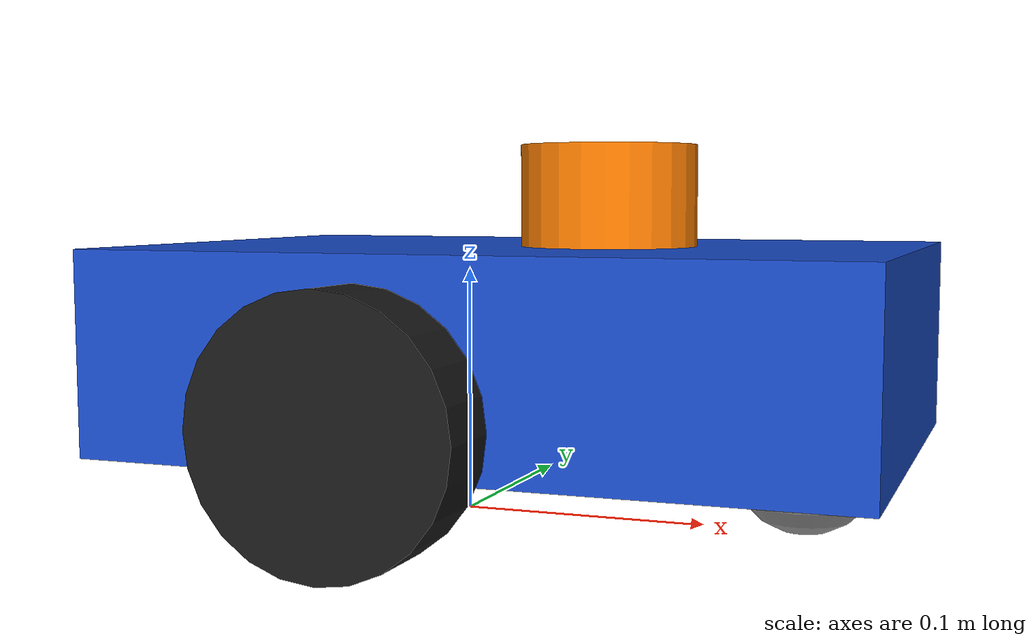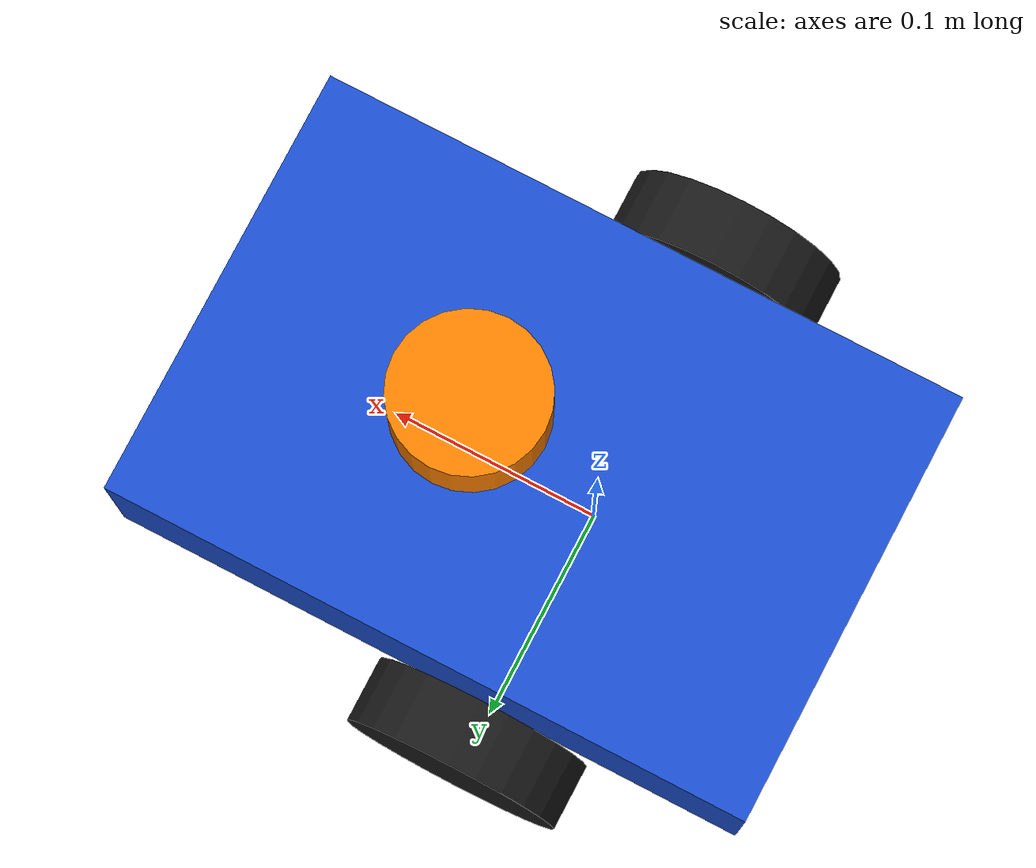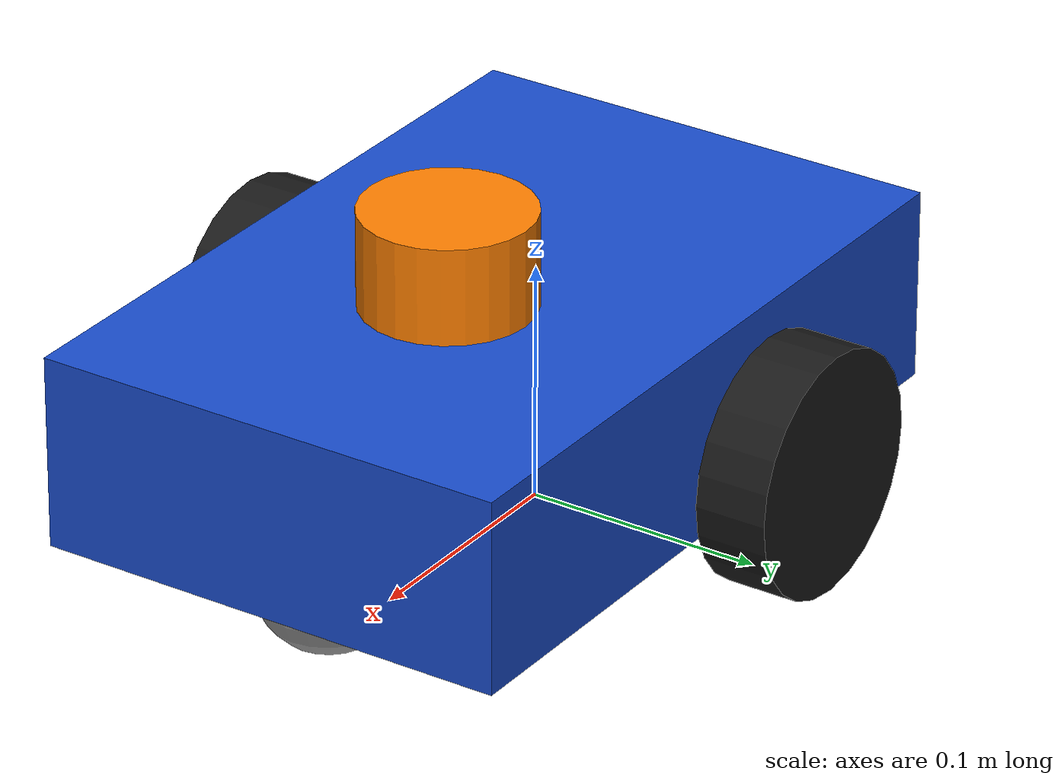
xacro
<?xml version="1.0"?>
<robot xmlns:xacro="http://www.ros.org/wiki/xacro" name="maze_robot">

    <!-- ===== Dimensions (meters) ===== -->
    <xacro:property name="chassis_x" value="0.30"/>
    <xacro:property name="chassis_y" value="0.20"/>
    <xacro:property name="chassis_z" value="0.08"/>
    <xacro:property name="chassis_mass" value="1.0"/>

    <xacro:property name="wheel_radius" value="0.05"/>
    <xacro:property name="wheel_width" value="0.03"/>
    <xacro:property name="wheel_mass" value="0.1"/>
    <xacro:property name="wheel_offset_y" value="0.12"/>

    <xacro:property name="caster_radius" value="0.03"/>
    <xacro:property name="caster_mass" value="0.05"/>

    <xacro:property name="lidar_radius" value="0.035"/>
    <xacro:property name="lidar_height" value="0.04"/>
    <xacro:property name="lidar_mass" value="0.1"/>

    <!-- ===== Colors ===== -->
    <material name="blue"><color rgba="0.1 0.3 0.8 1"/></material>
    <material name="black"><color rgba="0.1 0.1 0.1 1"/></material>
    <material name="orange"><color rgba="1 0.5 0 1"/></material>
    <material name="grey"><color rgba="0.6 0.6 0.6 1"/></material>

    <!-- ===== Inertia helpers ===== -->
    <xacro:macro name="box_inertia" params="m x y z">
        <inertia ixx="${m*(y*y+z*z)/12.0}" ixy="0.0" ixz="0.0"
            iyy="${m*(x*x+z*z)/12.0}" iyz="0.0"
            izz="${m*(x*x+y*y)/12.0}"/>
    </xacro:macro>

    <xacro:macro name="cylinder_inertia" params="m r h">
        <inertia ixx="${m*(3*r*r+h*h)/12.0}" ixy="0.0" ixz="0.0"
            iyy="${m*(3*r*r+h*h)/12.0}" iyz="0.0"
            izz="${m*r*r/2.0}"/>
    </xacro:macro>

    <xacro:macro name="sphere_inertia" params="m r">
        <inertia ixx="${2.0*m*r*r/5.0}" ixy="0.0" ixz="0.0"
            iyy="${2.0*m*r*r/5.0}" iyz="0.0"
            izz="${2.0*m*r*r/5.0}"/>
    </xacro:macro>

    <!-- ===== base_footprint -> base_link ===== -->
    <link name="base_footprint"/>

    <joint name="base_footprint_joint" type="fixed">
        <parent link="base_footprint"/>
        <child link="base_link"/>
        <origin xyz="0 0 ${wheel_radius}" rpy="0 0 0"/>
    </joint>

  <!-- ===== Chassis ===== -->
  <link name="base_link">
    <visual>
      <origin xyz="0.03 0 0.02"/>
      <geometry><box size="${chassis_x} ${chassis_y} ${chassis_z}"/></geometry>
      <material name="blue"/>
    </visual>
    <collision>
      <origin xyz="0.03 0 0.02"/>
      <geometry><box size="${chassis_x} ${chassis_y} ${chassis_z}"/></geometry>
    </collision>
    <inertial>
      <origin xyz="0.03 0 0.02"/>
      <mass value="${chassis_mass}"/>
      <xacro:box_inertia m="${chassis_mass}" x="${chassis_x}" y="${chassis_y}" z="${chassis_z}"/>
    </inertial>
  </link>

  <!-- ===== Wheels (side: 1 = left/+y, -1 = right/-y) ===== -->
  <xacro:macro name="wheel" params="prefix side">
    <link name="${prefix}_wheel_link">
      <visual>
        <geometry><cylinder radius="${wheel_radius}" length="${wheel_width}"/></geometry>
        <material name="black"/>
      </visual>
      <collision>
        <geometry><sphere radius="${wheel_radius}"/></geometry>
      </collision>
      <inertial>
        <mass value="${wheel_mass}"/>
        <xacro:cylinder_inertia m="${wheel_mass}" r="${wheel_radius}" h="${wheel_width}"/>
      </inertial>
    </link>

    <joint name="${prefix}_wheel_joint" type="continuous">
      <parent link="base_link"/>
      <child link="${prefix}_wheel_link"/>
      <origin xyz="0 ${side*wheel_offset_y} 0" rpy="${-side*pi/2} 0 0"/>
      <axis xyz="0 0 ${side}"/>
    </joint>
  </xacro:macro>

  <xacro:wheel prefix="left" side="1"/>
  <xacro:wheel prefix="right" side="-1"/>

  <!-- ===== Front caster ===== -->
  <link name="caster_link">
    <visual>
      <geometry><sphere radius="${caster_radius}"/></geometry>
      <material name="grey"/>
    </visual>
    <collision>
      <geometry><sphere radius="${caster_radius}"/></geometry>
    </collision>
    <inertial>
      <mass value="${caster_mass}"/>
      <xacro:sphere_inertia m="${caster_mass}" r="${caster_radius}"/>
    </inertial>
  </link>

  <joint name="caster_joint" type="fixed">
    <parent link="base_link"/>
    <child link="caster_link"/>
    <origin xyz="0.14 0 ${-(wheel_radius - caster_radius)}"/>
  </joint>

  <!-- ===== Lidar mount (sensor plugin added on Day 3) ===== -->
  <link name="lidar_link">
    <visual>
      <geometry><cylinder radius="${lidar_radius}" length="${lidar_height}"/></geometry>
      <material name="orange"/>
    </visual>
    <collision>
      <geometry><cylinder radius="${lidar_radius}" length="${lidar_height}"/></geometry>
    </collision>
    <inertial>
      <mass value="${lidar_mass}"/>
      <xacro:cylinder_inertia m="${lidar_mass}" r="${lidar_radius}" h="${lidar_height}"/>
    </inertial>
  </link>

  <joint name="lidar_joint" type="fixed">
    <parent link="base_link"/>
    <child link="lidar_link"/>
    <origin xyz="0.06 0 0.08"/>
  </joint>

</robot>
